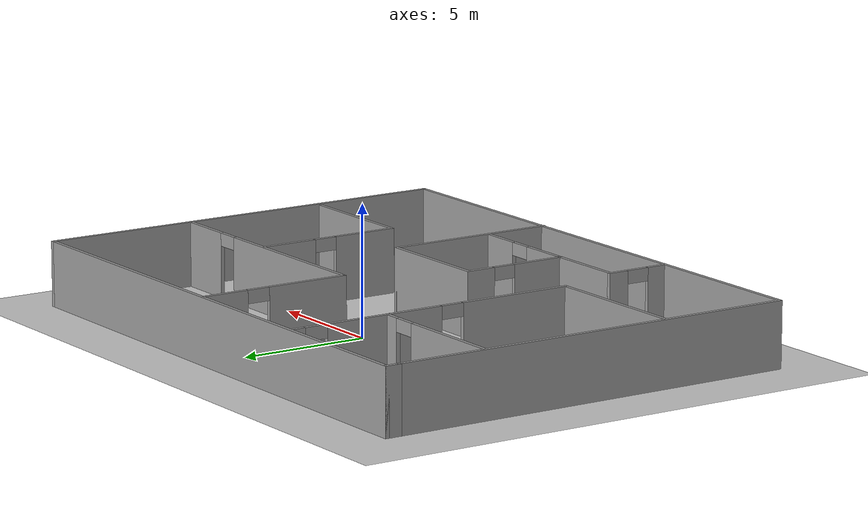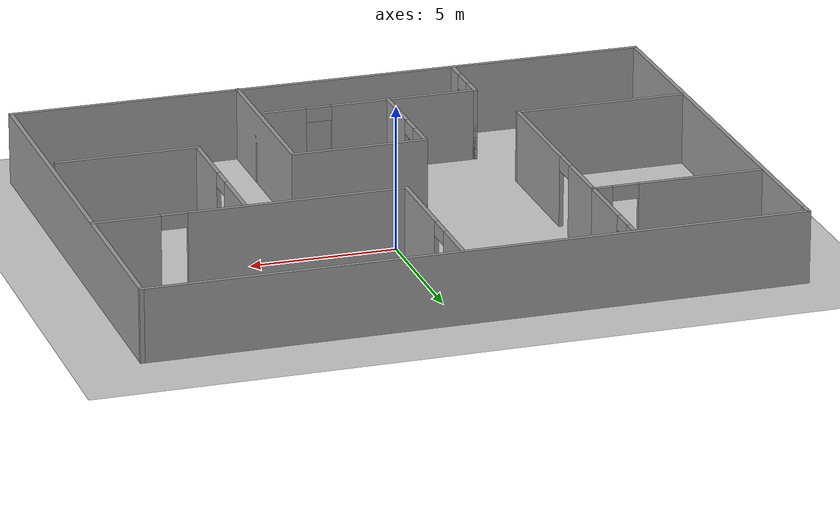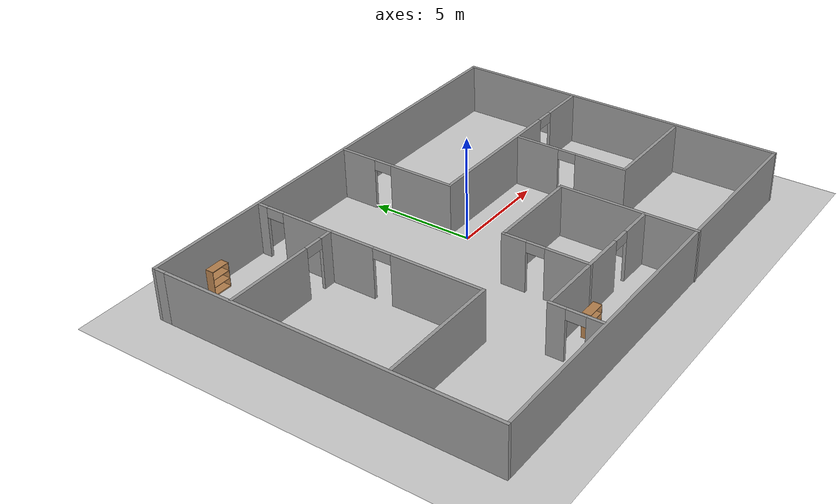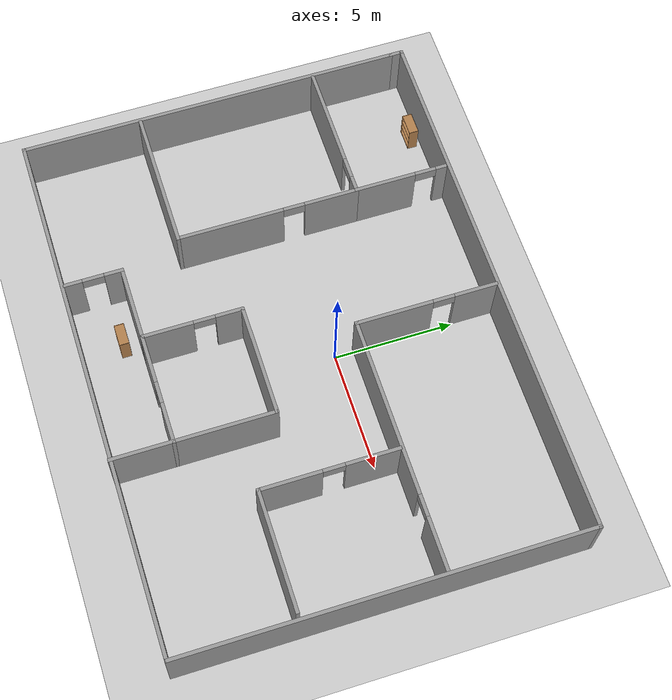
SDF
<sdf version="1.7">
 <world name="default">
  <light name="sun" type="directional">
   <pose>0 0 10 0 -0 0</pose>
   <diffuse>0.8 0.8 0.8 1</diffuse>
   <specular>0.2 0.2 0.2 1</specular>
   <attenuation>
    <range>1000</range>
    <constant>0.9</constant>
    <linear>0.01</linear>
    <quadratic>0.001</quadratic>
   </attenuation>
   <direction>-0.5 0.1 -0.9</direction>
   <spot><inner_angle>0</inner_angle><outer_angle>0</outer_angle><falloff>0</falloff></spot>
  </light>
  <model name="ground_plane">
   <static>1</static>
   <link name="link">
    <collision name="collision">
     <geometry><plane><normal>0 0 1</normal><size>100 100</size></plane></geometry>
     <surface><friction><ode><mu>100</mu><mu2>50</mu2></ode></friction></surface>
    </collision>
    <visual name="visual">
     <cast_shadows>0</cast_shadows>
     <geometry><plane><normal>0 0 1</normal><size>100 100</size></plane></geometry>
     <material>
      <script><uri>file://media/materials/scripts/gazebo.material</uri><name>Gazebo/Grey</name></script>
     </material>
    </visual>
   </link>
  </model>
  <gravity>0 0 -9.8</gravity>
  <magnetic_field>6e-06 2.3e-05 -4.2e-05</magnetic_field>
  <atmosphere type="adiabatic"/>
  <physics type="ode">
   <max_step_size>0.001</max_step_size>
   <real_time_factor>1</real_time_factor>
   <real_time_update_rate>1000</real_time_update_rate>
  </physics>
  <scene><ambient>0.4 0.4 0.4 1</ambient><background>0.7 0.7 0.7 1</background><shadows>1</shadows></scene>
  <audio><device>default</device></audio>
  <spherical_coordinates>
   <surface_model>EARTH_WGS84</surface_model>
   <latitude_deg>0</latitude_deg>
   <longitude_deg>0</longitude_deg>
   <elevation>0</elevation>
   <heading_deg>0</heading_deg>
  </spherical_coordinates>
  <model name="my_world">
   <pose>-0.648271 -1.50524 0 0 -0 0</pose>
   <link name="Wall_0">
    <collision name="Wall_0_Collision">
     <geometry><box><size>16.25 0.15 2.5</size></box></geometry>
     <pose>0 0 1.25 0 -0 0</pose>
    </collision>
    <visual name="Wall_0_Visual">
     <pose>0 0 1.25 0 -0 0</pose>
     <geometry><box><size>16.25 0.15 2.5</size></box></geometry>
     <material>
      <script><uri>file://media/materials/scripts/gazebo.material</uri><name>Gazebo/Grey</name></script>
      <ambient>1 1 1 1</ambient>
     </material>
     <meta><layer>0</layer></meta>
    </visual>
    <pose>-11.175 -0.232042 0 0 -0 -1.5708</pose>
   </link>
   <link name="Wall_1">
    <collision name="Wall_1_Collision">
     <geometry><box><size>22.5 0.15 2.5</size></box></geometry>
     <pose>0 0 1.25 0 -0 0</pose>
    </collision>
    <visual name="Wall_1_Visual">
     <pose>0 0 1.25 0 -0 0</pose>
     <geometry><box><size>22.5 0.15 2.5</size></box></geometry>
     <material>
      <script><uri>file://media/materials/scripts/gazebo.material</uri><name>Gazebo/Grey</name></script>
      <ambient>1 1 1 1</ambient>
     </material>
     <meta><layer>0</layer></meta>
    </visual>
    <pose>0 -8.28204 0 0 -0 0</pose>
   </link>
   <link name="Wall_10">
    <collision name="Wall_10_Collision">
     <geometry><box><size>6 0.15 2.5</size></box></geometry>
     <pose>0 0 1.25 0 -0 0</pose>
    </collision>
    <visual name="Wall_10_Visual">
     <pose>0 0 1.25 0 -0 0</pose>
     <geometry><box><size>6 0.15 2.5</size></box></geometry>
     <material>
      <script><uri>file://media/materials/scripts/gazebo.material</uri><name>Gazebo/Grey</name></script>
      <ambient>1 1 1 1</ambient>
     </material>
     <meta><layer>0</layer></meta>
    </visual>
    <pose>-8.14506 -3.29754 0 0 -0 3.14159</pose>
   </link>
   <link name="Wall_12">
    <pose>0.560832 5.29523 0 0 -0 -1.5708</pose>
    <visual name="Wall_12_Visual_0">
     <pose>-2.08563 0 1.25 0 -0 0</pose>
     <geometry><box><size>1.82875 0.15 2.5</size></box></geometry>
     <material>
      <script><uri>file://media/materials/scripts/gazebo.material</uri><name>Gazebo/Grey</name></script>
      <ambient>1 1 1 1</ambient>
     </material>
     <meta><layer>0</layer></meta>
    </visual>
    <collision name="Wall_12_Collision_0">
     <geometry><box><size>1.82875 0.15 2.5</size></box></geometry>
     <pose>-2.08563 0 1.25 0 -0 0</pose>
    </collision>
    <visual name="Wall_12_Visual_1">
     <pose>1.36437 0 1.25 0 -0 0</pose>
     <geometry><box><size>3.27125 0.15 2.5</size></box></geometry>
     <material>
      <script><uri>file://media/materials/scripts/gazebo.material</uri><name>Gazebo/Grey</name></script>
      <ambient>1 1 1 1</ambient>
     </material>
     <meta><layer>0</layer></meta>
    </visual>
    <collision name="Wall_12_Collision_1">
     <geometry><box><size>3.27125 0.15 2.5</size></box></geometry>
     <pose>1.36437 0 1.25 0 -0 0</pose>
    </collision>
    <visual name="Wall_12_Visual_2">
     <pose>-0.721252 0 2.25 0 -0 0</pose>
     <geometry><box><size>0.9 0.15 0.5</size></box></geometry>
     <material>
      <script><uri>file://media/materials/scripts/gazebo.material</uri><name>Gazebo/Grey</name></script>
      <ambient>1 1 1 1</ambient>
     </material>
     <meta><layer>0</layer></meta>
    </visual>
    <collision name="Wall_12_Collision_2">
     <geometry><box><size>0.9 0.15 0.5</size></box></geometry>
     <pose>-0.721252 0 2.25 0 -0 0</pose>
    </collision>
   </link>
   <link name="Wall_13">
    <pose>5.86083 2.37023 0 0 -0 0</pose>
    <visual name="Wall_13_Visual_0">
     <pose>-1.61849 0 1.25 0 -0 0</pose>
     <geometry><box><size>7.51302 0.15 2.5</size></box></geometry>
     <material>
      <script><uri>file://media/materials/scripts/gazebo.material</uri><name>Gazebo/Grey</name></script>
      <ambient>1 1 1 1</ambient>
     </material>
     <meta><layer>0</layer></meta>
    </visual>
    <collision name="Wall_13_Collision_0">
     <geometry><box><size>7.51302 0.15 2.5</size></box></geometry>
     <pose>-1.61849 0 1.25 0 -0 0</pose>
    </collision>
    <visual name="Wall_13_Visual_1">
     <pose>4.20651 0 1.25 0 -0 0</pose>
     <geometry><box><size>2.33698 0.15 2.5</size></box></geometry>
     <material>
      <script><uri>file://media/materials/scripts/gazebo.material</uri><name>Gazebo/Grey</name></script>
      <ambient>1 1 1 1</ambient>
     </material>
     <meta><layer>0</layer></meta>
    </visual>
    <collision name="Wall_13_Collision_1">
     <geometry><box><size>2.33698 0.15 2.5</size></box></geometry>
     <pose>4.20651 0 1.25 0 -0 0</pose>
    </collision>
    <visual name="Wall_13_Visual_2">
     <pose>2.58802 0 2.25 0 -0 0</pose>
     <geometry><box><size>0.9 0.15 0.5</size></box></geometry>
     <material>
      <script><uri>file://media/materials/scripts/gazebo.material</uri><name>Gazebo/Grey</name></script>
      <ambient>1 1 1 1</ambient>
     </material>
     <meta><layer>0</layer></meta>
    </visual>
    <collision name="Wall_13_Collision_2">
     <geometry><box><size>0.9 0.15 0.5</size></box></geometry>
     <pose>2.58802 0 2.25 0 -0 0</pose>
    </collision>
   </link>
   <link name="Wall_15">
    <pose>6.03522 -0.526392 0 0 -0 -1.5708</pose>
    <visual name="Wall_15_Visual_0">
     <pose>-1.75074 0 1.25 0 -0 0</pose>
     <geometry><box><size>2.24851 0.15 2.5</size></box></geometry>
     <material>
      <script><uri>file://media/materials/scripts/gazebo.material</uri><name>Gazebo/Grey</name></script>
      <ambient>1 1 1 1</ambient>
     </material>
     <meta><layer>0</layer></meta>
    </visual>
    <collision name="Wall_15_Collision_0">
     <geometry><box><size>2.24851 0.15 2.5</size></box></geometry>
     <pose>-1.75074 0 1.25 0 -0 0</pose>
    </collision>
    <visual name="Wall_15_Visual_1">
     <pose>1.57425 0 1.25 0 -0 0</pose>
     <geometry><box><size>2.60149 0.15 2.5</size></box></geometry>
     <material>
      <script><uri>file://media/materials/scripts/gazebo.material</uri><name>Gazebo/Grey</name></script>
      <ambient>1 1 1 1</ambient>
     </material>
     <meta><layer>0</layer></meta>
    </visual>
    <collision name="Wall_15_Collision_1">
     <geometry><box><size>2.60149 0.15 2.5</size></box></geometry>
     <pose>1.57425 0 1.25 0 -0 0</pose>
    </collision>
    <visual name="Wall_15_Visual_2">
     <pose>-0.176491 0 2.25 0 -0 0</pose>
     <geometry><box><size>0.9 0.15 0.5</size></box></geometry>
     <material>
      <script><uri>file://media/materials/scripts/gazebo.material</uri><name>Gazebo/Grey</name></script>
      <ambient>1 1 1 1</ambient>
     </material>
     <meta><layer>0</layer></meta>
    </visual>
    <collision name="Wall_15_Collision_2">
     <geometry><box><size>0.9 0.15 0.5</size></box></geometry>
     <pose>-0.176491 0 2.25 0 -0 0</pose>
    </collision>
   </link>
   <link name="Wall_16">
    <collision name="Wall_16_Collision">
     <geometry><box><size>5 0.15 2.5</size></box></geometry>
     <pose>0 0 1.25 0 -0 0</pose>
    </collision>
    <visual name="Wall_16_Visual">
     <pose>0 0 1.25 0 -0 0</pose>
     <geometry><box><size>5 0.15 2.5</size></box></geometry>
     <material>
      <script><uri>file://media/materials/scripts/gazebo.material</uri><name>Gazebo/Grey</name></script>
      <ambient>1 1 1 1</ambient>
     </material>
     <meta><layer>0</layer></meta>
    </visual>
    <pose>8.46022 -3.32639 0 0 -0 0</pose>
   </link>
   <link name="Wall_18">
    <pose>-4.4938 -6.99296 0 0 -0 1.5708</pose>
    <visual name="Wall_18_Visual_0">
     <pose>-0.860328 0 1.25 0 -0 0</pose>
     <geometry><box><size>0.779344 0.15 2.5</size></box></geometry>
     <material>
      <script><uri>file://media/materials/scripts/gazebo.material</uri><name>Gazebo/Grey</name></script>
      <ambient>1 1 1 1</ambient>
     </material>
     <meta><layer>0</layer></meta>
    </visual>
    <collision name="Wall_18_Collision_0">
     <geometry><box><size>0.779344 0.15 2.5</size></box></geometry>
     <pose>-0.860328 0 1.25 0 -0 0</pose>
    </collision>
    <visual name="Wall_18_Visual_1">
     <pose>0.839672 0 1.25 0 -0 0</pose>
     <geometry><box><size>0.820656 0.15 2.5</size></box></geometry>
     <material>
      <script><uri>file://media/materials/scripts/gazebo.material</uri><name>Gazebo/Grey</name></script>
      <ambient>1 1 1 1</ambient>
     </material>
     <meta><layer>0</layer></meta>
    </visual>
    <collision name="Wall_18_Collision_1">
     <geometry><box><size>0.820656 0.15 2.5</size></box></geometry>
     <pose>0.839672 0 1.25 0 -0 0</pose>
    </collision>
    <visual name="Wall_18_Visual_2">
     <pose>-0.020656 0 2.25 0 -0 0</pose>
     <geometry><box><size>0.9 0.15 0.5</size></box></geometry>
     <material>
      <script><uri>file://media/materials/scripts/gazebo.material</uri><name>Gazebo/Grey</name></script>
      <ambient>1 1 1 1</ambient>
     </material>
     <meta><layer>0</layer></meta>
    </visual>
    <collision name="Wall_18_Collision_2">
     <geometry><box><size>0.9 0.15 0.5</size></box></geometry>
     <pose>-0.020656 0 2.25 0 -0 0</pose>
    </collision>
   </link>
   <link name="Wall_19">
    <collision name="Wall_19_Collision">
     <geometry><box><size>3.25 0.15 2.5</size></box></geometry>
     <pose>0 0 1.25 0 -0 0</pose>
    </collision>
    <visual name="Wall_19_Visual">
     <pose>0 0 1.25 0 -0 0</pose>
     <geometry><box><size>3.25 0.15 2.5</size></box></geometry>
     <material>
      <script><uri>file://media/materials/scripts/gazebo.material</uri><name>Gazebo/Grey</name></script>
      <ambient>1 1 1 1</ambient>
     </material>
     <meta><layer>0</layer></meta>
    </visual>
    <pose>-2.9438 -5.81796 0 0 -0 0</pose>
   </link>
   <link name="Wall_2">
    <collision name="Wall_2_Collision">
     <geometry><box><size>16.75 0.15 2.5</size></box></geometry>
     <pose>0 0 1.25 0 -0 0</pose>
    </collision>
    <visual name="Wall_2_Visual">
     <pose>0 0 1.25 0 -0 0</pose>
     <geometry><box><size>16.75 0.15 2.5</size></box></geometry>
     <material>
      <script><uri>file://media/materials/scripts/gazebo.material</uri><name>Gazebo/Grey</name></script>
      <ambient>1 1 1 1</ambient>
     </material>
     <meta><layer>0</layer></meta>
    </visual>
    <pose>11.175 0.017958 0 0 -0 1.5708</pose>
   </link>
   <link name="Wall_20">
    <pose>-1.3938 -3.76796 0 0 -0 1.5708</pose>
    <visual name="Wall_20_Visual_0">
     <pose>-1.04764 0 1.25 0 -0 0</pose>
     <geometry><box><size>2.15473 0.15 2.5</size></box></geometry>
     <material>
      <script><uri>file://media/materials/scripts/gazebo.material</uri><name>Gazebo/Grey</name></script>
      <ambient>1 1 1 1</ambient>
     </material>
     <meta><layer>0</layer></meta>
    </visual>
    <collision name="Wall_20_Collision_0">
     <geometry><box><size>2.15473 0.15 2.5</size></box></geometry>
     <pose>-1.04764 0 1.25 0 -0 0</pose>
    </collision>
    <visual name="Wall_20_Visual_1">
     <pose>1.52736 0 1.25 0 -0 0</pose>
     <geometry><box><size>1.19527 0.15 2.5</size></box></geometry>
     <material>
      <script><uri>file://media/materials/scripts/gazebo.material</uri><name>Gazebo/Grey</name></script>
      <ambient>1 1 1 1</ambient>
     </material>
     <meta><layer>0</layer></meta>
    </visual>
    <collision name="Wall_20_Collision_1">
     <geometry><box><size>1.19527 0.15 2.5</size></box></geometry>
     <pose>1.52736 0 1.25 0 -0 0</pose>
    </collision>
    <visual name="Wall_20_Visual_2">
     <pose>0.479727 0 2.25 0 -0 0</pose>
     <geometry><box><size>0.9 0.15 0.5</size></box></geometry>
     <material>
      <script><uri>file://media/materials/scripts/gazebo.material</uri><name>Gazebo/Grey</name></script>
      <ambient>1 1 1 1</ambient>
     </material>
     <meta><layer>0</layer></meta>
    </visual>
    <collision name="Wall_20_Collision_2">
     <geometry><box><size>0.9 0.15 0.5</size></box></geometry>
     <pose>0.479727 0 2.25 0 -0 0</pose>
    </collision>
   </link>
   <link name="Wall_21">
    <collision name="Wall_21_Collision">
     <geometry><box><size>4.75 0.15 2.5</size></box></geometry>
     <pose>0 0 1.25 0 -0 0</pose>
    </collision>
    <visual name="Wall_21_Visual">
     <pose>0 0 1.25 0 -0 0</pose>
     <geometry><box><size>4.75 0.15 2.5</size></box></geometry>
     <material>
      <script><uri>file://media/materials/scripts/gazebo.material</uri><name>Gazebo/Grey</name></script>
      <ambient>1 1 1 1</ambient>
     </material>
     <meta><layer>0</layer></meta>
    </visual>
    <pose>0.906204 -1.71796 0 0 -0 0</pose>
   </link>
   <link name="Wall_22">
    <collision name="Wall_22_Collision">
     <geometry><box><size>6.75 0.15 2.5</size></box></geometry>
     <pose>0 0 1.25 0 -0 0</pose>
    </collision>
    <visual name="Wall_22_Visual">
     <pose>0 0 1.25 0 -0 0</pose>
     <geometry><box><size>6.75 0.15 2.5</size></box></geometry>
     <material>
      <script><uri>file://media/materials/scripts/gazebo.material</uri><name>Gazebo/Grey</name></script>
      <ambient>1 1 1 1</ambient>
     </material>
     <meta><layer>0</layer></meta>
    </visual>
    <pose>3.2062 -5.01796 0 0 -0 -1.5708</pose>
   </link>
   <link name="Wall_24">
    <pose>0.906204 -5.81796 0 0 -0 0</pose>
    <visual name="Wall_24_Visual_0">
     <pose>-1.32283 0 1.25 0 -0 0</pose>
     <geometry><box><size>2.10433 0.15 2.5</size></box></geometry>
     <material>
      <script><uri>file://media/materials/scripts/gazebo.material</uri><name>Gazebo/Grey</name></script>
      <ambient>1 1 1 1</ambient>
     </material>
     <meta><layer>0</layer></meta>
    </visual>
    <collision name="Wall_24_Collision_0">
     <geometry><box><size>2.10433 0.15 2.5</size></box></geometry>
     <pose>-1.32283 0 1.25 0 -0 0</pose>
    </collision>
    <visual name="Wall_24_Visual_1">
     <pose>1.50216 0 1.25 0 -0 0</pose>
     <geometry><box><size>1.74567 0.15 2.5</size></box></geometry>
     <material>
      <script><uri>file://media/materials/scripts/gazebo.material</uri><name>Gazebo/Grey</name></script>
      <ambient>1 1 1 1</ambient>
     </material>
     <meta><layer>0</layer></meta>
    </visual>
    <collision name="Wall_24_Collision_1">
     <geometry><box><size>1.74567 0.15 2.5</size></box></geometry>
     <pose>1.50216 0 1.25 0 -0 0</pose>
    </collision>
    <visual name="Wall_24_Visual_2">
     <pose>0.17933 0 2.25 0 -0 0</pose>
     <geometry><box><size>0.9 0.15 0.5</size></box></geometry>
     <material>
      <script><uri>file://media/materials/scripts/gazebo.material</uri><name>Gazebo/Grey</name></script>
      <ambient>1 1 1 1</ambient>
     </material>
     <meta><layer>0</layer></meta>
    </visual>
    <collision name="Wall_24_Collision_2">
     <geometry><box><size>0.9 0.15 0.5</size></box></geometry>
     <pose>0.17933 0 2.25 0 -0 0</pose>
    </collision>
   </link>
   <link name="Wall_3">
    <collision name="Wall_3_Collision">
     <geometry><box><size>22.5 0.15 2.5</size></box></geometry>
     <pose>0 0 1.25 0 -0 0</pose>
    </collision>
    <visual name="Wall_3_Visual">
     <pose>0 0 1.25 0 -0 0</pose>
     <geometry><box><size>22.5 0.15 2.5</size></box></geometry>
     <material>
      <script><uri>file://media/materials/scripts/gazebo.material</uri><name>Gazebo/Grey</name></script>
      <ambient>1 1 1 1</ambient>
     </material>
     <meta><layer>0</layer></meta>
    </visual>
    <pose>0 8.31796 0 0 -0 3.14159</pose>
   </link>
   <link name="Wall_4">
    <collision name="Wall_4_Collision">
     <geometry><box><size>0.65 0.15 2.5</size></box></geometry>
     <pose>0 0 1.25 0 -0 0</pose>
    </collision>
    <visual name="Wall_4_Visual">
     <pose>0 0 1.25 0 -0 0</pose>
     <geometry><box><size>0.65 0.15 2.5</size></box></geometry>
     <material>
      <script><uri>file://media/materials/scripts/gazebo.material</uri><name>Gazebo/Grey</name></script>
      <ambient>1 1 1 1</ambient>
     </material>
     <meta><layer>0</layer></meta>
    </visual>
    <pose>-11.175 8.06796 0 0 -0 -1.5708</pose>
   </link>
   <link name="Wall_6">
    <pose>-8.14506 4.30246 0 0 -0 0</pose>
    <visual name="Wall_6_Visual_0">
     <pose>-0.817597 0 1.25 0 -0 0</pose>
     <geometry><box><size>4.36481 0.15 2.5</size></box></geometry>
     <material>
      <script><uri>file://media/materials/scripts/gazebo.material</uri><name>Gazebo/Grey</name></script>
      <ambient>1 1 1 1</ambient>
     </material>
     <meta><layer>0</layer></meta>
    </visual>
    <collision name="Wall_6_Collision_0">
     <geometry><box><size>4.36481 0.15 2.5</size></box></geometry>
     <pose>-0.817597 0 1.25 0 -0 0</pose>
    </collision>
    <visual name="Wall_6_Visual_1">
     <pose>2.6324 0 1.25 0 -0 0</pose>
     <geometry><box><size>0.735193 0.15 2.5</size></box></geometry>
     <material>
      <script><uri>file://media/materials/scripts/gazebo.material</uri><name>Gazebo/Grey</name></script>
      <ambient>1 1 1 1</ambient>
     </material>
     <meta><layer>0</layer></meta>
    </visual>
    <collision name="Wall_6_Collision_1">
     <geometry><box><size>0.735193 0.15 2.5</size></box></geometry>
     <pose>2.6324 0 1.25 0 -0 0</pose>
    </collision>
    <visual name="Wall_6_Visual_2">
     <pose>1.81481 0 2.25 0 -0 0</pose>
     <geometry><box><size>0.9 0.15 0.5</size></box></geometry>
     <material>
      <script><uri>file://media/materials/scripts/gazebo.material</uri><name>Gazebo/Grey</name></script>
      <ambient>1 1 1 1</ambient>
     </material>
     <meta><layer>0</layer></meta>
    </visual>
    <collision name="Wall_6_Collision_2">
     <geometry><box><size>0.9 0.15 0.5</size></box></geometry>
     <pose>1.81481 0 2.25 0 -0 0</pose>
    </collision>
   </link>
   <link name="Wall_7">
    <pose>-5.22006 6.22746 0 0 -0 1.5708</pose>
    <visual name="Wall_7_Visual_0">
     <pose>-0.6921 0 1.25 0 -0 0</pose>
     <geometry><box><size>2.6158 0.15 2.5</size></box></geometry>
     <material>
      <script><uri>file://media/materials/scripts/gazebo.material</uri><name>Gazebo/Grey</name></script>
      <ambient>1 1 1 1</ambient>
     </material>
     <meta><layer>0</layer></meta>
    </visual>
    <collision name="Wall_7_Collision_0">
     <geometry><box><size>2.6158 0.15 2.5</size></box></geometry>
     <pose>-0.6921 0 1.25 0 -0 0</pose>
    </collision>
    <visual name="Wall_7_Visual_1">
     <pose>1.7579 0 1.25 0 -0 0</pose>
     <geometry><box><size>0.484199 0.15 2.5</size></box></geometry>
     <material>
      <script><uri>file://media/materials/scripts/gazebo.material</uri><name>Gazebo/Grey</name></script>
      <ambient>1 1 1 1</ambient>
     </material>
     <meta><layer>0</layer></meta>
    </visual>
    <collision name="Wall_7_Collision_1">
     <geometry><box><size>0.484199 0.15 2.5</size></box></geometry>
     <pose>1.7579 0 1.25 0 -0 0</pose>
    </collision>
    <visual name="Wall_7_Visual_2">
     <pose>1.0658 0 2.25 0 -0 0</pose>
     <geometry><box><size>0.9 0.15 0.5</size></box></geometry>
     <material>
      <script><uri>file://media/materials/scripts/gazebo.material</uri><name>Gazebo/Grey</name></script>
      <ambient>1 1 1 1</ambient>
     </material>
     <meta><layer>0</layer></meta>
    </visual>
    <collision name="Wall_7_Collision_2">
     <geometry><box><size>0.9 0.15 0.5</size></box></geometry>
     <pose>1.0658 0 2.25 0 -0 0</pose>
    </collision>
   </link>
   <link name="Wall_9">
    <pose>-5.22006 0.502456 0 0 -0 -1.5708</pose>
    <visual name="Wall_9_Visual_0">
     <pose>-2.71577 0 1.25 0 -0 0</pose>
     <geometry><box><size>2.31847 0.15 2.5</size></box></geometry>
     <material>
      <script><uri>file://media/materials/scripts/gazebo.material</uri><name>Gazebo/Grey</name></script>
      <ambient>1 1 1 1</ambient>
     </material>
     <meta><layer>0</layer></meta>
    </visual>
    <collision name="Wall_9_Collision_0">
     <geometry><box><size>2.31847 0.15 2.5</size></box></geometry>
     <pose>-2.71577 0 1.25 0 -0 0</pose>
    </collision>
    <visual name="Wall_9_Visual_1">
     <pose>1.60923 0 1.25 0 -0 0</pose>
     <geometry><box><size>4.53153 0.15 2.5</size></box></geometry>
     <material>
      <script><uri>file://media/materials/scripts/gazebo.material</uri><name>Gazebo/Grey</name></script>
      <ambient>1 1 1 1</ambient>
     </material>
     <meta><layer>0</layer></meta>
    </visual>
    <collision name="Wall_9_Collision_1">
     <geometry><box><size>4.53153 0.15 2.5</size></box></geometry>
     <pose>1.60923 0 1.25 0 -0 0</pose>
    </collision>
    <visual name="Wall_9_Visual_2">
     <pose>-1.10653 0 2.25 0 -0 0</pose>
     <geometry><box><size>0.9 0.15 0.5</size></box></geometry>
     <material>
      <script><uri>file://media/materials/scripts/gazebo.material</uri><name>Gazebo/Grey</name></script>
      <ambient>1 1 1 1</ambient>
     </material>
     <meta><layer>0</layer></meta>
    </visual>
    <collision name="Wall_9_Collision_2">
     <geometry><box><size>0.9 0.15 0.5</size></box></geometry>
     <pose>-1.10653 0 2.25 0 -0 0</pose>
    </collision>
   </link>
   <static>1</static>
  </model>
  <model name="bookshelf">
   <static>1</static>
   <link name="link">
    <inertial><mass>1</mass></inertial>
    <collision name="back">
     <pose>0 0.005 0.6 0 -0 0</pose>
     <geometry><box><size>0.9 0.01 1.2</size></box></geometry>
    </collision>
    <visual name="visual1">
     <pose>0 0.005 0.6 0 -0 0</pose>
     <geometry><box><size>0.9 0.01 1.2</size></box></geometry>
     <material>
      <script><uri>file://media/materials/scripts/gazebo.material</uri><name>Gazebo/Wood</name></script>
     </material>
    </visual>
    <collision name="left_side">
     <pose>0.45 -0.195 0.6 0 -0 0</pose>
     <geometry><box><size>0.02 0.4 1.2</size></box></geometry>
    </collision>
    <visual name="visual2">
     <pose>0.45 -0.195 0.6 0 -0 0</pose>
     <geometry><box><size>0.02 0.4 1.2</size></box></geometry>
     <material>
      <script><uri>file://media/materials/scripts/gazebo.material</uri><name>Gazebo/Wood</name></script>
     </material>
    </visual>
    <collision name="right_side">
     <pose>-0.45 -0.195 0.6 0 -0 0</pose>
     <geometry><box><size>0.02 0.4 1.2</size></box></geometry>
    </collision>
    <visual name="visual3">
     <pose>-0.45 -0.195 0.6 0 -0 0</pose>
     <geometry><box><size>0.02 0.4 1.2</size></box></geometry>
     <material>
      <script><uri>file://media/materials/scripts/gazebo.material</uri><name>Gazebo/Wood</name></script>
     </material>
    </visual>
    <collision name="bottom">
     <pose>0 -0.195 0.03 0 -0 0</pose>
     <geometry><box><size>0.88 0.4 0.06</size></box></geometry>
    </collision>
    <visual name="visual4">
     <pose>0 -0.195 0.03 0 -0 0</pose>
     <geometry><box><size>0.88 0.4 0.06</size></box></geometry>
     <material>
      <script><uri>file://media/materials/scripts/gazebo.material</uri><name>Gazebo/Wood</name></script>
     </material>
    </visual>
    <collision name="top">
     <pose>0 -0.195 1.19 0 -0 0</pose>
     <geometry><box><size>0.88 0.4 0.02</size></box></geometry>
    </collision>
    <visual name="visual5">
     <pose>0 -0.195 1.19 0 -0 0</pose>
     <geometry><box><size>0.88 0.4 0.02</size></box></geometry>
     <material>
      <script><uri>file://media/materials/scripts/gazebo.material</uri><name>Gazebo/Wood</name></script>
     </material>
    </visual>
    <collision name="low_shelf">
     <pose>0 -0.195 0.43 0 -0 0</pose>
     <geometry><box><size>0.88 0.4 0.02</size></box></geometry>
    </collision>
    <visual name="visual6">
     <pose>0 -0.195 0.43 0 -0 0</pose>
     <geometry><box><size>0.88 0.4 0.02</size></box></geometry>
     <material>
      <script><uri>file://media/materials/scripts/gazebo.material</uri><name>Gazebo/Wood</name></script>
     </material>
    </visual>
    <collision name="high_shelf">
     <pose>0 -0.195 0.8 0 -0 0</pose>
     <geometry><box><size>0.88 0.4 0.02</size></box></geometry>
    </collision>
    <visual name="visual7">
     <pose>0 -0.195 0.8 0 -0 0</pose>
     <geometry><box><size>0.88 0.4 0.02</size></box></geometry>
     <material>
      <script><uri>file://media/materials/scripts/gazebo.material</uri><name>Gazebo/Wood</name></script>
     </material>
    </visual>
   </link>
   <pose>-9.03518 6.53886 0 0 -0 0</pose>
  </model>
  <model name="bookshelf_0">
   <static>1</static>
   <link name="link">
    <inertial><mass>1</mass></inertial>
    <collision name="back">
     <pose>0 0.005 0.6 0 -0 0</pose>
     <geometry><box><size>0.9 0.01 1.2</size></box></geometry>
    </collision>
    <visual name="visual1">
     <pose>0 0.005 0.6 0 -0 0</pose>
     <geometry><box><size>0.9 0.01 1.2</size></box></geometry>
     <material>
      <script><uri>file://media/materials/scripts/gazebo.material</uri><name>Gazebo/Wood</name></script>
     </material>
    </visual>
    <collision name="left_side">
     <pose>0.45 -0.195 0.6 0 -0 0</pose>
     <geometry><box><size>0.02 0.4 1.2</size></box></geometry>
    </collision>
    <visual name="visual2">
     <pose>0.45 -0.195 0.6 0 -0 0</pose>
     <geometry><box><size>0.02 0.4 1.2</size></box></geometry>
     <material>
      <script><uri>file://media/materials/scripts/gazebo.material</uri><name>Gazebo/Wood</name></script>
     </material>
    </visual>
    <collision name="right_side">
     <pose>-0.45 -0.195 0.6 0 -0 0</pose>
     <geometry><box><size>0.02 0.4 1.2</size></box></geometry>
    </collision>
    <visual name="visual3">
     <pose>-0.45 -0.195 0.6 0 -0 0</pose>
     <geometry><box><size>0.02 0.4 1.2</size></box></geometry>
     <material>
      <script><uri>file://media/materials/scripts/gazebo.material</uri><name>Gazebo/Wood</name></script>
     </material>
    </visual>
    <collision name="bottom">
     <pose>0 -0.195 0.03 0 -0 0</pose>
     <geometry><box><size>0.88 0.4 0.06</size></box></geometry>
    </collision>
    <visual name="visual4">
     <pose>0 -0.195 0.03 0 -0 0</pose>
     <geometry><box><size>0.88 0.4 0.06</size></box></geometry>
     <material>
      <script><uri>file://media/materials/scripts/gazebo.material</uri><name>Gazebo/Wood</name></script>
     </material>
    </visual>
    <collision name="top">
     <pose>0 -0.195 1.19 0 -0 0</pose>
     <geometry><box><size>0.88 0.4 0.02</size></box></geometry>
    </collision>
    <visual name="visual5">
     <pose>0 -0.195 1.19 0 -0 0</pose>
     <geometry><box><size>0.88 0.4 0.02</size></box></geometry>
     <material>
      <script><uri>file://media/materials/scripts/gazebo.material</uri><name>Gazebo/Wood</name></script>
     </material>
    </visual>
    <collision name="low_shelf">
     <pose>0 -0.195 0.43 0 -0 0</pose>
     <geometry><box><size>0.88 0.4 0.02</size></box></geometry>
    </collision>
    <visual name="visual6">
     <pose>0 -0.195 0.43 0 -0 0</pose>
     <geometry><box><size>0.88 0.4 0.02</size></box></geometry>
     <material>
      <script><uri>file://media/materials/scripts/gazebo.material</uri><name>Gazebo/Wood</name></script>
     </material>
    </visual>
    <collision name="high_shelf">
     <pose>0 -0.195 0.8 0 -0 0</pose>
     <geometry><box><size>0.88 0.4 0.02</size></box></geometry>
    </collision>
    <visual name="visual7">
     <pose>0 -0.195 0.8 0 -0 0</pose>
     <geometry><box><size>0.88 0.4 0.02</size></box></geometry>
     <material>
      <script><uri>file://media/materials/scripts/gazebo.material</uri><name>Gazebo/Wood</name></script>
     </material>
    </visual>
   </link>
   <pose>-3.02318 -7.83973 0 0 -0 0</pose>
  </model>
 </world>
</sdf>
